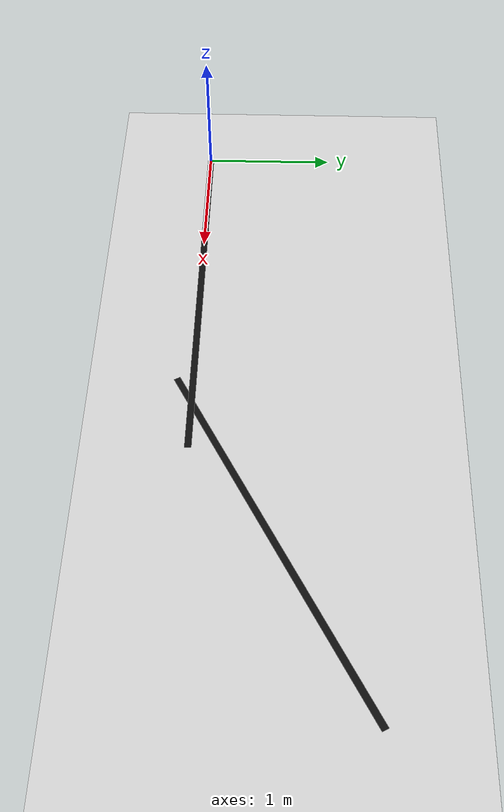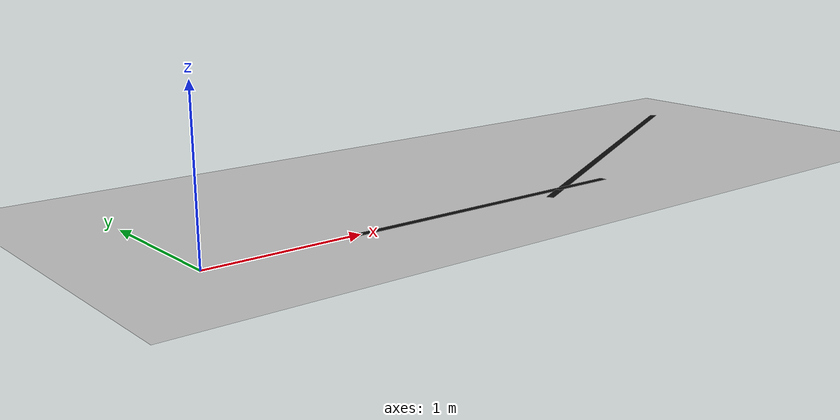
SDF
<?xml version="1.0"?>
<sdf version="1.6">
  <world name="line_track">

    <include>
      <uri>model://ground_plane</uri>
    </include>

    <include>
      <uri>model://sun</uri>
    </include>

    <model name="line_segment_1">
      <static>true</static>
      <pose>1.5 0 0.001 0 0 0</pose>
      <link name="link">
        <visual name="visual">
          <geometry>
            <box>
              <size>3.0 0.05 0.001</size>
            </box>
          </geometry>
          <material>
            <ambient>0.05 0.05 0.05 1</ambient>
            <diffuse>0.05 0.05 0.05 1</diffuse>
          </material>
        </visual>
      </link>
    </model>

    <model name="line_segment_2">
      <static>true</static>
      <pose>3.7 0.6 0.001 0 0 0.5</pose>
      <link name="link">
        <visual name="visual">
          <geometry>
            <box>
              <size>3.0 0.05 0.001</size>
            </box>
          </geometry>
          <material>
            <ambient>0.05 0.05 0.05 1</ambient>
            <diffuse>0.05 0.05 0.05 1</diffuse>
          </material>
        </visual>
      </link>
    </model>

  </world>
</sdf>
